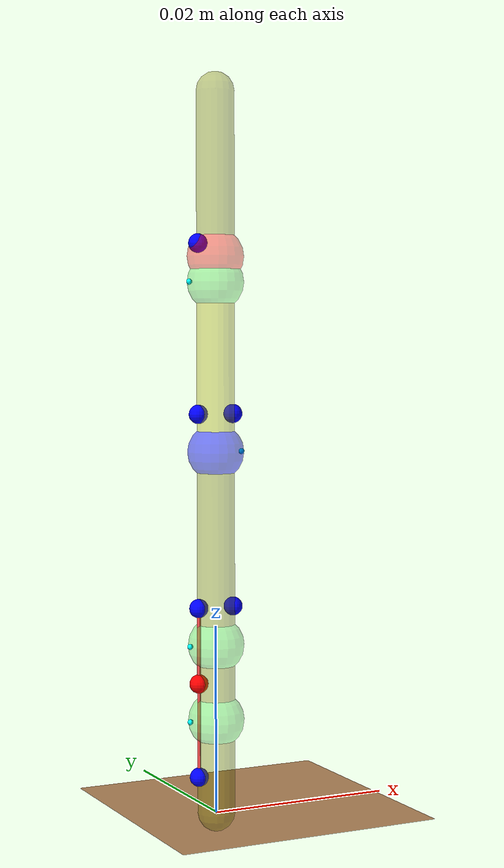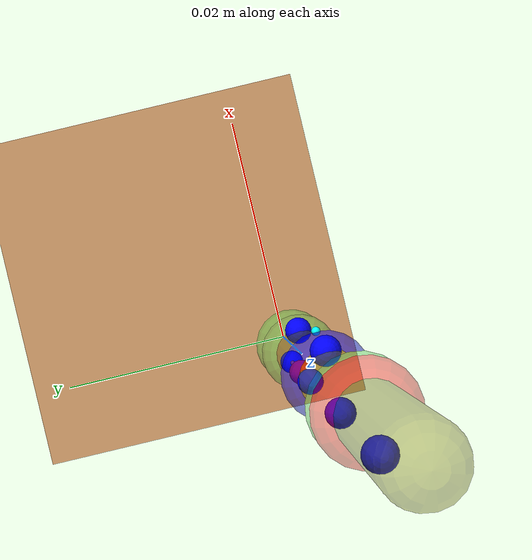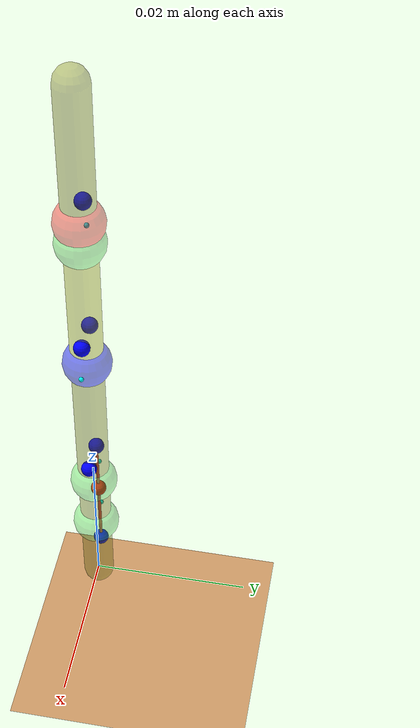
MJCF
<mujoco model="3SegRMdevel">
	<compiler coordinate="local" angle="radian" inertiafromgeom="false" inertiagrouprange="0 10"/>
	<option timestep="0.001" integrator="RK4" collision="predefined">

	</option>
	<size nkey="1" />

	<default>
        <geom rgba=".8 .6 .4 0.5" solimp=".99 .99 0"/>
        <joint limited="true" range="-1.57 0"/><!-- relative to reference pose-->
	</default>

	<asset>
		<texture type="skybox" builtin="gradient" rgb1="1 1 1" rgb2=".6 .8 1" width="256" height="256"/>
		<texture name="texplane" type="2d" builtin="checker" rgb1=".2 .3 .4" rgb2=".1 0.15 0.2"
            width="100" height="100"/>
		<material name='MatPlane' reflectance='0.5' texture="texplane" texrepeat="1 1" texuniform="true"/>

	</asset>
<!-- cumulative lengths 0.01, 0.0180277, 0.0384948, 0.056286, 0.0760299 -->
	<worldbody><!-- BODY 0 -->
		<light pos="0 1 1" dir="0 -1 -1" diffuse="1 1 1"/>
		<geom name='floor' pos='0 0 -0.002' size='1 1 0.125' type='plane' material="MatPlane"/><!-- make the floor the same distance as the foot sphere radius -->
		<body name="m_tar" mocap="true" pos="0 0 0"><!-- BODY 1 -->
			<geom type="sphere" size="0.003" rgba="1 0 0 0"/><!-- made transparent for now -->
		</body>
		<body name="s_pft" pos="0 0 0"><!-- Foot --><!-- BODY 2 -->
			<inertial pos="0 0. 0" mass="0.000163" diaginertia="2.575E-09 4.48E-10 2.73E-09" />
			<geom name="geom_pft" type="capsule" fromto="0 0 0 0 0 0.01" size="0.002" rgba="0.5 0.5 0 .4"/>
			<joint name="j_pft" type="free" pos="0 0 0" stiffness="0" damping="0" limited="false"/>
			<site name="t_ank_dst" pos="-0.002 0 0.004" size="0.001" rgba="0 0 1 1"/>
			<body name="s_tar" pos="0 0 0.01"><!-- Tarsals --><!-- BODY 3 -->
				<inertial pos="0 0. 0" mass="0.00015557" diaginertia="1.279E-09 3.99E-10 1.264E-09" /><!-- mass + moi of foot combined with tarsus-->
				<geom name="geom_tar" type="capsule" fromto="0 0 0 0 0 0.0080277" size="0.002" rgba="0.5 0.5 0 .4"/>
				<joint name="j_tmt" type="hinge" axis="0 1 0" pos="0 0 0" solreflimit="0.002 1" solimplimit="0.9 0.9 0.001"/>
				<geom name="jointSphere_tmt" type="sphere" pos="0 0 0" size="0.003" rgba=".3 .9 .3 .4"/><!-- seems to be necessary for ground contact -->
				<site name="t_tmt_side" pos="-0.003 0 0" size="0.0003" rgba="0 1 1 1"/>
				<site name="t_ank_via" pos="-0.002 0 0.004" size="0.001" rgba="1 0 0 1"/>
				<body name="s_tib" pos="0 0 0.0080277"><!-- Tibfib --><!-- BODY 4 -->
					<inertial pos="0 0 0" mass="0.00036153" diaginertia="6.383E-09 1.524E-09 6.6E-09"/>
					<geom name="geom_sha" type="capsule" fromto="0 0 0 0 0 0.0204671" size="0.002" rgba="0.5 0.5 0 .4"/>
					<joint name="j_ank" type="hinge" axis="0 1 0" pos="0 0 0"/>
					<site name="t_ank_prx" pos="-0.002 0 0.004" size="0.001" rgba="0 0 1 1"/>
					<site name="t_kne_dst" pos="0.002 0 0.004" size="0.001" rgba="0 0 1 1"/>
					<geom name="jointSphere_ank" type="sphere" pos="0 0 0" size="0.003" rgba=".3 .9 .3 .4"/>
					<site name="t_ank_side" pos="-0.003 0 0" size="0.0003" rgba="0 1 1 1"/>
					<body name="s_fem" pos="0 0 0.0204671"><!-- Femur --><!-- BODY 5 -->
						<inertial pos="0 0 0" mass="0.00077613" diaginertia="1.57E-08 6.71E-09 1.594E-08"/>
						<geom name="geom_thg" type="capsule" fromto="0 0 0 0 0 0.0177912" size="0.002" rgba="0.7 0.7 0 .4"/>
						<joint name="j_kne" type="hinge" axis="0 1 0" pos="0 0 0"/>
						<site name="t_kne_prx" pos="0.002 0 0.004" size="0.001" rgba="0 0 1 1"/>
						<site name="t_hip_dst" pos="-0.002 0 0.004" size="0.001" rgba="0 0 1 1"/>
						<geom name="jointSphere_kne" type="sphere" pos="0 0 0" size="0.003" rgba="0 0 1 .5"/>
						<site name="t_kne_side" pos="0.003 0 0" size="0.0003" rgba="0 1 1 1"/>
						<body name="s_com" pos="0 0 0.0204671"><!-- BODY 6 for COM applying force -->
							<inertial pos="0 0 0" mass="0.000000000001"/>
							<geom type="sphere" pos="0 0 0" size="0.003" rgba="1 0 0 .4"/>
						</body>
						<body name="s_bod" pos="0 0 0.0177912"><!-- BODY 7 -->
							<inertial pos="0 0. 0" mass="0.0045" diaginertia="0.000000891 0.000000473 0.00000112"/>
							<geom name="geom_bod" type="capsule" fromto="0 0 0 0 0 0.0197439" size="0.002" rgba="0.5 0.5 0 .4"/><!-- fromto="0 0. 0.046286  0 0. 0.0660299 -->
							<site name="t_hip_prx" pos="-0.002 0 0.004" size="0.001" rgba="0 0 1 1"/>
							<geom name="jointSphere_hip" type="sphere" pos="0 0. 0" size="0.003" rgba=".3 .9 .3 .4"/>
							<site name="t_hip_side" pos="-0.003 0 0" size="0.0003" rgba="0 1 1 1"/>
							<joint name="j_hip" type="hinge" axis="0 1 0" pos="0 0 0"/>
							<geom name="snoutSphere" type="sphere" pos="0 0. 0" size="0.003" rgba="0 0 1 0.4"/>
						</body>
					</body>
				</body>
			</body>
		</body>
	</worldbody>
	<contact>
		<pair geom1="floor" geom2="geom_pft"  friction="1 1 0.005 0.0001 0.0001"/>
		<pair geom1="floor" geom2="jointSphere_hip"/>
		<pair geom1="floor" geom2="jointSphere_kne"/>
		<pair geom1="floor" geom2="jointSphere_ank"/>
		<pair geom1="floor" geom2="jointSphere_tmt"/>
	</contact>
	<equality>
	</equality>
	<tendon>
		<spatial width="0.0002" rgba=".95 .3 .3 1" limited="false" name="tend_ank" stiffness="0">
			<site site="t_ank_prx"/>
			<geom geom="jointSphere_ank" sidesite="t_ank_side"/>
			<site site="t_ank_via"/>
			<geom geom="jointSphere_tmt" sidesite="t_tmt_side"/>
			<site site="t_ank_dst"/>
		</spatial>
	</tendon>
	<actuator>

		<!--  ================= Torque actuators ================= /-->
		<motor tendon='tend_ank' name='a_tend_ank'/>
		<position kp="0.1" joint="j_kne" gear="1" ctrlrange="0 3.14" ctrllimited="false"/>
		<position kp="0.1" joint="j_hip" gear="1" ctrlrange="-3.14 0" ctrllimited="false"/>
	</actuator>
	<sensor>
	</sensor>

	<keyframe>

	</keyframe>
</mujoco>
